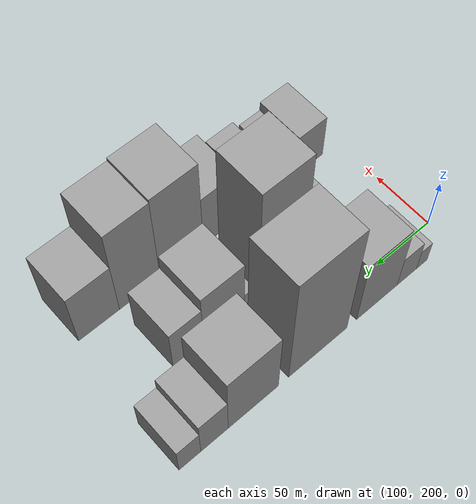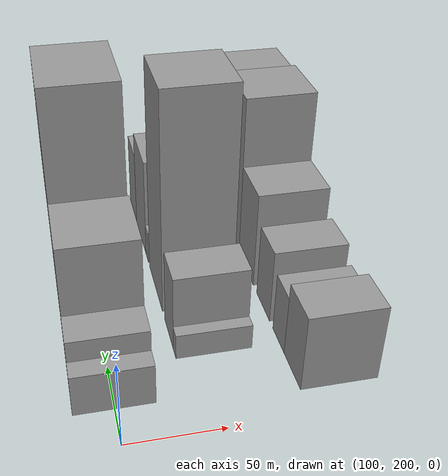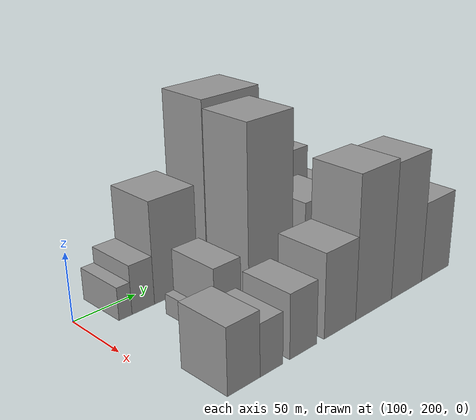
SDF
<sdf version="1.6">
 <world name="default">
  <model name="building_30">
   <static>1</static>
   <pose>100.0000 227.2108 0 0.000000 0.000000 0.000000</pose>
   <link name="link">
    <pose>0 0 12.00 0 0 0</pose>
    <collision name="collision"><geometry><box><size>40.0000 10.4929 24.0000</size></box></geometry></collision>
    <visual name="visual">
     <cast_shadows>0</cast_shadows>
     <geometry><box><size>40.0000 10.4929 24.0000</size></box></geometry>
     <material>
      <script>
       <uri>model://grey_wall/materials/scripts</uri>
       <uri>model://grey_wall/materials/textures</uri>
       <name>vrc/grey_wall</name>
      </script>
     </material>
    </visual>
   </link>
  </model>
  <model name="building_31">
   <static>1</static>
   <pose>100.0000 241.8036 0 0.000000 0.000000 0.000000</pose>
   <link name="link">
    <pose>0 0 18.00 0 0 0</pose>
    <collision name="collision"><geometry><box><size>40.0000 18.6928 36.0000</size></box></geometry></collision>
    <visual name="visual">
     <cast_shadows>0</cast_shadows>
     <geometry><box><size>40.0000 18.6928 36.0000</size></box></geometry>
     <material>
      <script>
       <uri>model://grey_wall/materials/scripts</uri>
       <uri>model://grey_wall/materials/textures</uri>
       <name>vrc/grey_wall</name>
      </script>
     </material>
    </visual>
   </link>
  </model>
  <model name="building_32">
   <static>1</static>
   <pose>100.0000 270.3446 0 0.000000 0.000000 0.000000</pose>
   <link name="link">
    <pose>0 0 37.50 0 0 0</pose>
    <collision name="collision"><geometry><box><size>40.0000 38.3891 75.0000</size></box></geometry></collision>
    <visual name="visual">
     <cast_shadows>0</cast_shadows>
     <geometry><box><size>40.0000 38.3891 75.0000</size></box></geometry>
     <material>
      <script>
       <uri>model://grey_wall/materials/scripts</uri>
       <uri>model://grey_wall/materials/textures</uri>
       <name>vrc/grey_wall</name>
      </script>
     </material>
    </visual>
   </link>
  </model>
  <model name="building_33">
   <static>1</static>
   <pose>100.0000 324.7302 0 0.000000 0.000000 0.000000</pose>
   <link name="link">
    <pose>0 0 66.00 0 0 0</pose>
    <collision name="collision"><geometry><box><size>40.0000 52.3822 132.0000</size></box></geometry></collision>
    <visual name="visual">
     <cast_shadows>0</cast_shadows>
     <geometry><box><size>40.0000 52.3822 132.0000</size></box></geometry>
     <material>
      <script>
       <uri>model://grey_wall/materials/scripts</uri>
       <uri>model://grey_wall/materials/textures</uri>
       <name>vrc/grey_wall</name>
      </script>
     </material>
    </visual>
   </link>
  </model>
  <model name="building_34">
   <static>1</static>
   <pose>100.0000 381.3301 0 0.000000 0.000000 0.000000</pose>
   <link name="link">
    <pose>0 0 37.50 0 0 0</pose>
    <collision name="collision"><geometry><box><size>40.0000 42.8177 75.0000</size></box></geometry></collision>
    <visual name="visual">
     <cast_shadows>0</cast_shadows>
     <geometry><box><size>40.0000 42.8177 75.0000</size></box></geometry>
     <material>
      <script>
       <uri>model://grey_wall/materials/scripts</uri>
       <uri>model://grey_wall/materials/textures</uri>
       <name>vrc/grey_wall</name>
      </script>
     </material>
    </visual>
   </link>
  </model>
  <model name="building_35">
   <static>1</static>
   <pose>100.0000 414.0542 0 0.000000 0.000000 0.000000</pose>
   <link name="link">
    <pose>0 0 22.50 0 0 0</pose>
    <collision name="collision"><geometry><box><size>40.0000 22.6305 45.0000</size></box></geometry></collision>
    <visual name="visual">
     <cast_shadows>0</cast_shadows>
     <geometry><box><size>40.0000 22.6305 45.0000</size></box></geometry>
     <material>
      <script>
       <uri>model://grey_wall/materials/scripts</uri>
       <uri>model://grey_wall/materials/textures</uri>
       <name>vrc/grey_wall</name>
      </script>
     </material>
    </visual>
   </link>
  </model>
  <model name="building_36">
   <static>1</static>
   <pose>100.0000 434.1898 0 0.000000 0.000000 0.000000</pose>
   <link name="link">
    <pose>0 0 16.50 0 0 0</pose>
    <collision name="collision"><geometry><box><size>40.0000 17.6406 33.0000</size></box></geometry></collision>
    <visual name="visual">
     <cast_shadows>0</cast_shadows>
     <geometry><box><size>40.0000 17.6406 33.0000</size></box></geometry>
     <material>
      <script>
       <uri>model://grey_wall/materials/scripts</uri>
       <uri>model://grey_wall/materials/textures</uri>
       <name>vrc/grey_wall</name>
      </script>
     </material>
    </visual>
   </link>
  </model>
  <model name="building_83">
   <static>1</static>
   <pose>155.0000 252.5712 0 0.000000 0.000000 0.000000</pose>
   <link name="link">
    <pose>0 0 7.50 0 0 0</pose>
    <collision name="collision"><geometry><box><size>40.0000 7.2485 15.0000</size></box></geometry></collision>
    <visual name="visual">
     <cast_shadows>0</cast_shadows>
     <geometry><box><size>40.0000 7.2485 15.0000</size></box></geometry>
     <material>
      <script>
       <uri>model://grey_wall/materials/scripts</uri>
       <uri>model://grey_wall/materials/textures</uri>
       <name>vrc/grey_wall</name>
      </script>
     </material>
    </visual>
   </link>
  </model>
  <model name="building_84">
   <static>1</static>
   <pose>155.0000 267.7210 0 0.000000 0.000000 0.000000</pose>
   <link name="link">
    <pose>0 0 22.50 0 0 0</pose>
    <collision name="collision"><geometry><box><size>40.0000 23.0512 45.0000</size></box></geometry></collision>
    <visual name="visual">
     <cast_shadows>0</cast_shadows>
     <geometry><box><size>40.0000 23.0512 45.0000</size></box></geometry>
     <material>
      <script>
       <uri>model://grey_wall/materials/scripts</uri>
       <uri>model://grey_wall/materials/textures</uri>
       <name>vrc/grey_wall</name>
      </script>
     </material>
    </visual>
   </link>
  </model>
  <model name="building_85">
   <static>1</static>
   <pose>155.0000 306.8475 0 0.000000 0.000000 0.000000</pose>
   <link name="link">
    <pose>0 0 66.00 0 0 0</pose>
    <collision name="collision"><geometry><box><size>40.0000 41.2019 132.0000</size></box></geometry></collision>
    <visual name="visual">
     <cast_shadows>0</cast_shadows>
     <geometry><box><size>40.0000 41.2019 132.0000</size></box></geometry>
     <material>
      <script>
       <uri>model://grey_wall/materials/scripts</uri>
       <uri>model://grey_wall/materials/textures</uri>
       <name>vrc/grey_wall</name>
      </script>
     </material>
    </visual>
   </link>
  </model>
  <model name="building_86">
   <static>1</static>
   <pose>155.0000 335.7751 0 0.000000 0.000000 0.000000</pose>
   <link name="link">
    <pose>0 0 10.50 0 0 0</pose>
    <collision name="collision"><geometry><box><size>40.0000 8.6532 21.0000</size></box></geometry></collision>
    <visual name="visual">
     <cast_shadows>0</cast_shadows>
     <geometry><box><size>40.0000 8.6532 21.0000</size></box></geometry>
     <material>
      <script>
       <uri>model://grey_wall/materials/scripts</uri>
       <uri>model://grey_wall/materials/textures</uri>
       <name>vrc/grey_wall</name>
      </script>
     </material>
    </visual>
   </link>
  </model>
  <model name="building_87">
   <static>1</static>
   <pose>155.0000 358.0737 0 0.000000 0.000000 0.000000</pose>
   <link name="link">
    <pose>0 0 31.50 0 0 0</pose>
    <collision name="collision"><geometry><box><size>40.0000 35.9441 63.0000</size></box></geometry></collision>
    <visual name="visual">
     <cast_shadows>0</cast_shadows>
     <geometry><box><size>40.0000 35.9441 63.0000</size></box></geometry>
     <material>
      <script>
       <uri>model://grey_wall/materials/scripts</uri>
       <uri>model://grey_wall/materials/textures</uri>
       <name>vrc/grey_wall</name>
      </script>
     </material>
    </visual>
   </link>
  </model>
  <model name="building_88">
   <static>1</static>
   <pose>155.0000 389.0352 0 0.000000 0.000000 0.000000</pose>
   <link name="link">
    <pose>0 0 24.00 0 0 0</pose>
    <collision name="collision"><geometry><box><size>40.0000 25.9788 48.0000</size></box></geometry></collision>
    <visual name="visual">
     <cast_shadows>0</cast_shadows>
     <geometry><box><size>40.0000 25.9788 48.0000</size></box></geometry>
     <material>
      <script>
       <uri>model://grey_wall/materials/scripts</uri>
       <uri>model://grey_wall/materials/textures</uri>
       <name>vrc/grey_wall</name>
      </script>
     </material>
    </visual>
   </link>
  </model>
  <model name="building_137">
   <static>1</static>
   <pose>210.0000 228.6387 0 0.000000 0.000000 0.000000</pose>
   <link name="link">
    <pose>0 0 22.50 0 0 0</pose>
    <collision name="collision"><geometry><box><size>40.0000 25.7962 45.0000</size></box></geometry></collision>
    <visual name="visual">
     <cast_shadows>0</cast_shadows>
     <geometry><box><size>40.0000 25.7962 45.0000</size></box></geometry>
     <material>
      <script>
       <uri>model://grey_wall/materials/scripts</uri>
       <uri>model://grey_wall/materials/textures</uri>
       <name>vrc/grey_wall</name>
      </script>
     </material>
    </visual>
   </link>
  </model>
  <model name="building_138">
   <static>1</static>
   <pose>210.0000 251.1076 0 0.000000 0.000000 0.000000</pose>
   <link name="link">
    <pose>0 0 18.00 0 0 0</pose>
    <collision name="collision"><geometry><box><size>40.0000 19.1416 36.0000</size></box></geometry></collision>
    <visual name="visual">
     <cast_shadows>0</cast_shadows>
     <geometry><box><size>40.0000 19.1416 36.0000</size></box></geometry>
     <material>
      <script>
       <uri>model://grey_wall/materials/scripts</uri>
       <uri>model://grey_wall/materials/textures</uri>
       <name>vrc/grey_wall</name>
      </script>
     </material>
    </visual>
   </link>
  </model>
  <model name="building_139">
   <static>1</static>
   <pose>210.0000 278.8732 0 0.000000 0.000000 0.000000</pose>
   <link name="link">
    <pose>0 0 22.50 0 0 0</pose>
    <collision name="collision"><geometry><box><size>40.0000 24.3896 45.0000</size></box></geometry></collision>
    <visual name="visual">
     <cast_shadows>0</cast_shadows>
     <geometry><box><size>40.0000 24.3896 45.0000</size></box></geometry>
     <material>
      <script>
       <uri>model://grey_wall/materials/scripts</uri>
       <uri>model://grey_wall/materials/textures</uri>
       <name>vrc/grey_wall</name>
      </script>
     </material>
    </visual>
   </link>
  </model>
  <model name="building_140">
   <static>1</static>
   <pose>210.0000 313.6063 0 0.000000 0.000000 0.000000</pose>
   <link name="link">
    <pose>0 0 30.00 0 0 0</pose>
    <collision name="collision"><geometry><box><size>40.0000 31.0766 60.0000</size></box></geometry></collision>
    <visual name="visual">
     <cast_shadows>0</cast_shadows>
     <geometry><box><size>40.0000 31.0766 60.0000</size></box></geometry>
     <material>
      <script>
       <uri>model://grey_wall/materials/scripts</uri>
       <uri>model://grey_wall/materials/textures</uri>
       <name>vrc/grey_wall</name>
      </script>
     </material>
    </visual>
   </link>
  </model>
  <model name="building_141">
   <static>1</static>
   <pose>210.0000 348.3318 0 0.000000 0.000000 0.000000</pose>
   <link name="link">
    <pose>0 0 51.00 0 0 0</pose>
    <collision name="collision"><geometry><box><size>40.0000 38.3745 102.0000</size></box></geometry></collision>
    <visual name="visual">
     <cast_shadows>0</cast_shadows>
     <geometry><box><size>40.0000 38.3745 102.0000</size></box></geometry>
     <material>
      <script>
       <uri>model://grey_wall/materials/scripts</uri>
       <uri>model://grey_wall/materials/textures</uri>
       <name>vrc/grey_wall</name>
      </script>
     </material>
    </visual>
   </link>
  </model>
  <model name="building_142">
   <static>1</static>
   <pose>210.0000 385.1033 0 0.000000 0.000000 0.000000</pose>
   <link name="link">
    <pose>0 0 49.50 0 0 0</pose>
    <collision name="collision"><geometry><box><size>40.0000 35.1685 99.0000</size></box></geometry></collision>
    <visual name="visual">
     <cast_shadows>0</cast_shadows>
     <geometry><box><size>40.0000 35.1685 99.0000</size></box></geometry>
     <material>
      <script>
       <uri>model://grey_wall/materials/scripts</uri>
       <uri>model://grey_wall/materials/textures</uri>
       <name>vrc/grey_wall</name>
      </script>
     </material>
    </visual>
   </link>
  </model>
  <model name="building_143">
   <static>1</static>
   <pose>210.0000 419.7979 0 0.000000 0.000000 0.000000</pose>
   <link name="link">
    <pose>0 0 30.00 0 0 0</pose>
    <collision name="collision"><geometry><box><size>40.0000 34.2205 60.0000</size></box></geometry></collision>
    <visual name="visual">
     <cast_shadows>0</cast_shadows>
     <geometry><box><size>40.0000 34.2205 60.0000</size></box></geometry>
     <material>
      <script>
       <uri>model://grey_wall/materials/scripts</uri>
       <uri>model://grey_wall/materials/textures</uri>
       <name>vrc/grey_wall</name>
      </script>
     </material>
    </visual>
   </link>
  </model>
 </world>
</sdf>
